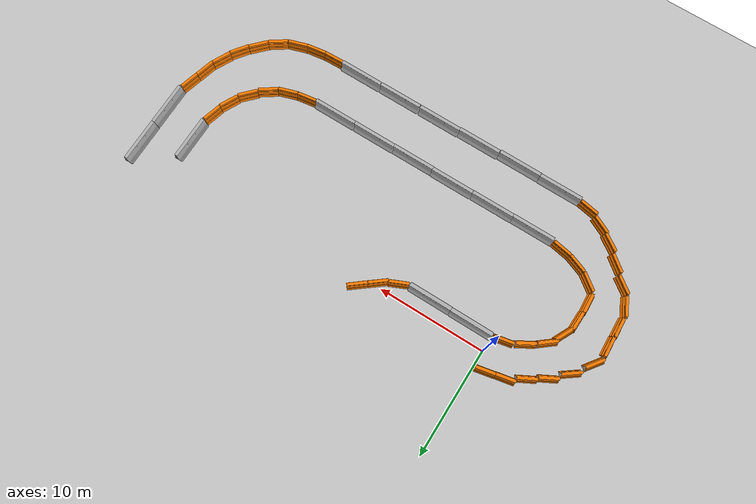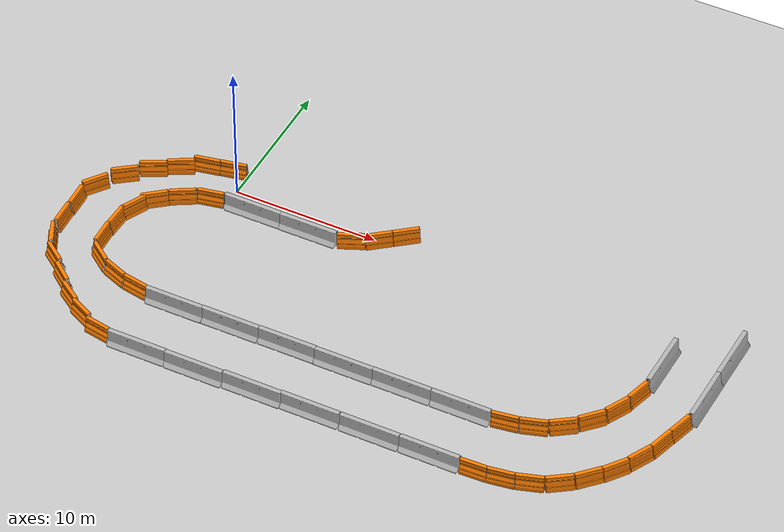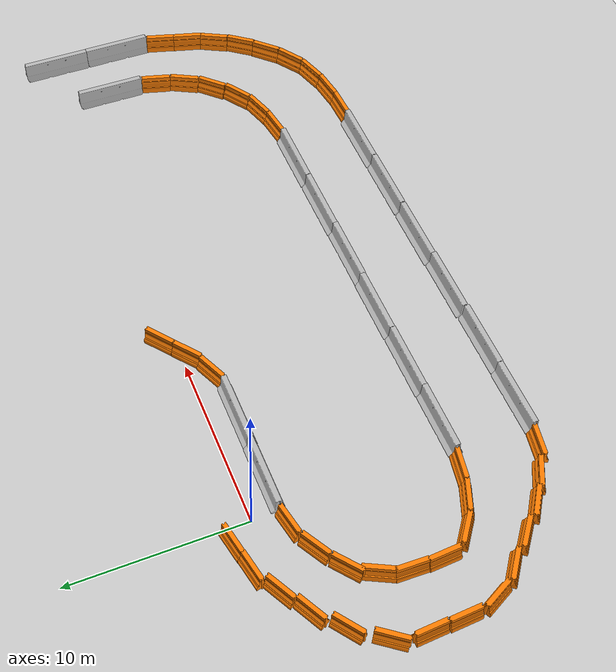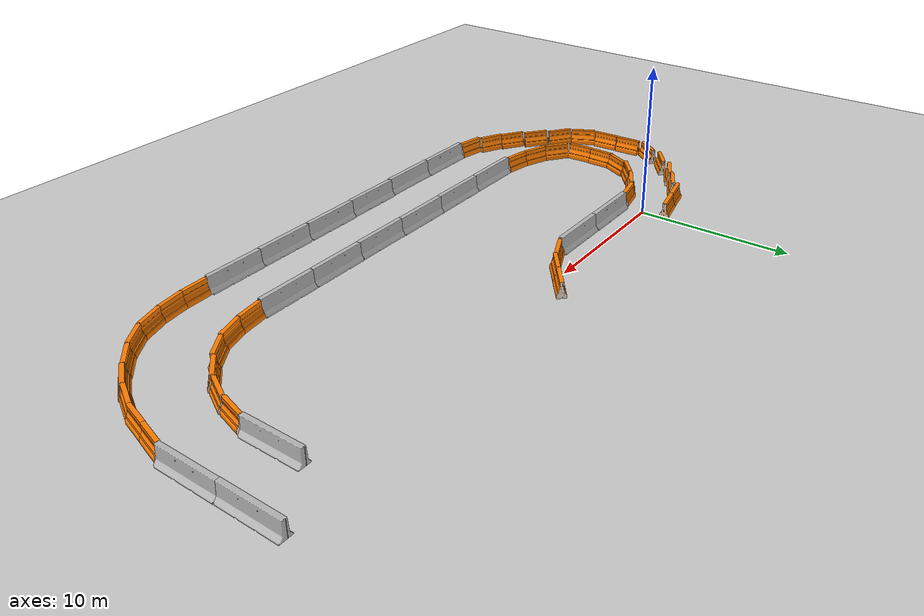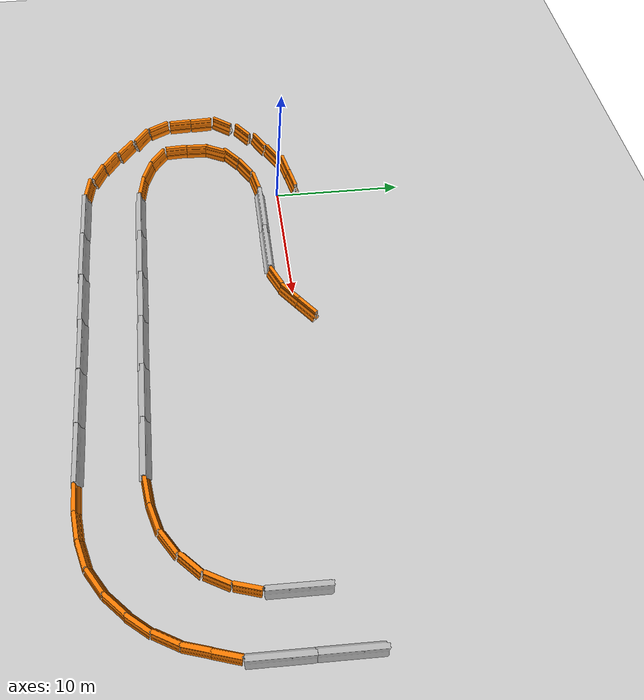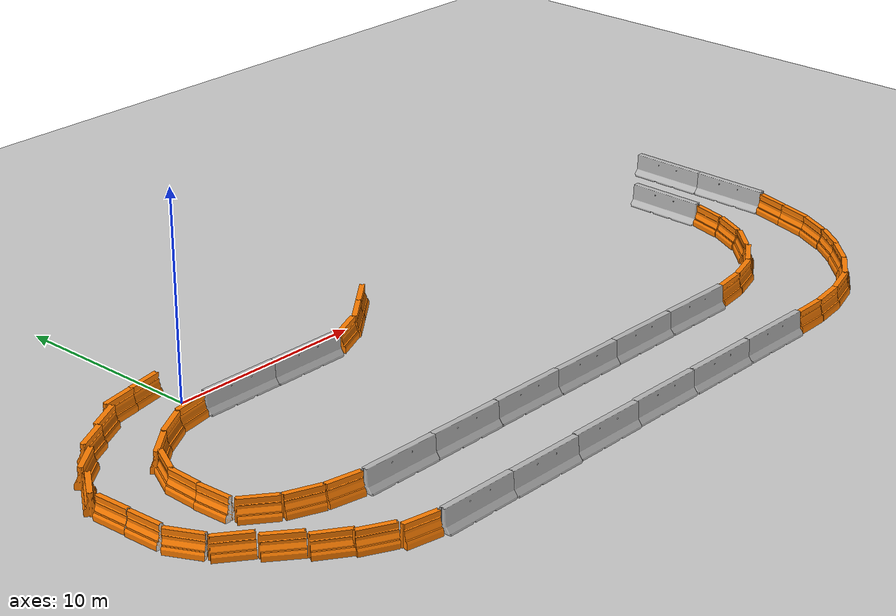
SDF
<sdf version="1.6">
 <world name="default">
  <model name="ground_plane">
   <static>1</static>
   <link name="link">
    <collision name="collision">
     <geometry><plane><normal>0 0 1</normal><size>100 100</size></plane></geometry>
     <surface><friction><ode><mu>100</mu><mu2>50</mu2></ode></friction></surface>
    </collision>
    <visual name="visual">
     <cast_shadows>0</cast_shadows>
     <geometry><plane><normal>0 0 1</normal><size>100 100</size></plane></geometry>
     <material>
      <script><uri>file://media/materials/scripts/gazebo.material</uri><name>Gazebo/Grey</name></script>
     </material>
    </visual>
   </link>
  </model>
  <model name="jersey_barrier_0_clone">
   <static>1</static>
   <link name="link">
    <visual name="visual">
     <geometry>
      <mesh><uri>model://jersey_barrier/meshes/jersey_barrier.dae</uri><scale>1 1 1</scale></mesh>
     </geometry>
    </visual>
    <collision name="upright">
     <pose>0 0 0.5715 0 -0 0</pose>
     <geometry><box><size>4.06542 0.3063 1.143</size></box></geometry>
    </collision>
    <collision name="base">
     <pose>0 0 0.032258 0 -0 0</pose>
     <geometry><box><size>4.06542 0.8107 0.064516</size></box></geometry>
    </collision>
    <collision name="base2">
     <pose>0 0 0.1 0 -0 0</pose>
     <geometry><box><size>4.06542 0.65 0.1</size></box></geometry>
    </collision>
    <collision name="base3">
     <pose>0 0 0.2 0 -0 0</pose>
     <geometry><box><size>4.06542 0.5 0.1</size></box></geometry>
    </collision>
    <collision name="left-angle">
     <pose>0 -0.224 0.2401 0.9 -0 0</pose>
     <geometry><box><size>4.06542 0.5 0.064516</size></box></geometry>
    </collision>
    <collision name="right-angle">
     <pose>0 0.224 0.2401 -0.9 0 0</pose>
     <geometry><box><size>4.06542 0.5 0.064516</size></box></geometry>
    </collision>
   </link>
   <pose>2.00755 -1.4776 0 0 -0 0</pose>
  </model>
  <model name="jersey_barrier_0_clone_0_clone">
   <static>1</static>
   <link name="link">
    <visual name="visual">
     <geometry>
      <mesh><uri>model://jersey_barrier/meshes/jersey_barrier.dae</uri><scale>1 1 1</scale></mesh>
     </geometry>
    </visual>
    <collision name="upright">
     <pose>0 0 0.5715 0 -0 0</pose>
     <geometry><box><size>4.06542 0.3063 1.143</size></box></geometry>
    </collision>
    <collision name="base">
     <pose>0 0 0.032258 0 -0 0</pose>
     <geometry><box><size>4.06542 0.8107 0.064516</size></box></geometry>
    </collision>
    <collision name="base2">
     <pose>0 0 0.1 0 -0 0</pose>
     <geometry><box><size>4.06542 0.65 0.1</size></box></geometry>
    </collision>
    <collision name="base3">
     <pose>0 0 0.2 0 -0 0</pose>
     <geometry><box><size>4.06542 0.5 0.1</size></box></geometry>
    </collision>
    <collision name="left-angle">
     <pose>0 -0.224 0.2401 0.9 -0 0</pose>
     <geometry><box><size>4.06542 0.5 0.064516</size></box></geometry>
    </collision>
    <collision name="right-angle">
     <pose>0 0.224 0.2401 -0.9 0 0</pose>
     <geometry><box><size>4.06542 0.5 0.064516</size></box></geometry>
    </collision>
   </link>
   <pose>6.01454 -1.49668 0 0 -0 0</pose>
  </model>
  <model name="drc_practice_organge_jersey_barrier_clone">
   <static>1</static>
   <link name="link">
    <visual name="visual">
     <geometry>
      <mesh>
       <uri>model://drc_practice_orange_jersey_barrier/meshes/jersey_barrier.dae</uri>
       <scale>1 1 1</scale>
      </mesh>
     </geometry>
    </visual>
    <collision name="collision">
     <geometry>
      <mesh>
       <uri>model://drc_practice_orange_jersey_barrier/meshes/jersey_barrier.dae</uri>
       <scale>1 1 1</scale>
      </mesh>
     </geometry>
    </collision>
   </link>
   <pose>8.92402 -1.13836 0 0 0 -1.14589</pose>
  </model>
  <model name="drc_practice_organge_jersey_barrier_clone_0_clone">
   <static>1</static>
   <link name="link">
    <visual name="visual">
     <geometry>
      <mesh>
       <uri>model://drc_practice_orange_jersey_barrier/meshes/jersey_barrier.dae</uri>
       <scale>1 1 1</scale>
      </mesh>
     </geometry>
    </visual>
    <collision name="collision">
     <geometry>
      <mesh>
       <uri>model://drc_practice_orange_jersey_barrier/meshes/jersey_barrier.dae</uri>
       <scale>1 1 1</scale>
      </mesh>
     </geometry>
    </collision>
   </link>
   <pose>10.4581 -0.28408 0 0 0 -0.895836</pose>
  </model>
  <model name="drc_practice_organge_jersey_barrier_clone_0_clone_clone">
   <static>1</static>
   <link name="link">
    <visual name="visual">
     <geometry>
      <mesh>
       <uri>model://drc_practice_orange_jersey_barrier/meshes/jersey_barrier.dae</uri>
       <scale>1 1 1</scale>
      </mesh>
     </geometry>
    </visual>
    <collision name="collision">
     <geometry>
      <mesh>
       <uri>model://drc_practice_orange_jersey_barrier/meshes/jersey_barrier.dae</uri>
       <scale>1 1 1</scale>
      </mesh>
     </geometry>
    </collision>
   </link>
   <pose>11.8548 0.818549 0 0 0 -0.895836</pose>
  </model>
  <model name="jersey_barrier_1_clone_clone_clone_1_clone_2">
   <static>1</static>
   <link name="link">
    <visual name="visual">
     <geometry>
      <mesh><uri>model://jersey_barrier/meshes/jersey_barrier.dae</uri><scale>1 1 1</scale></mesh>
     </geometry>
    </visual>
    <collision name="upright">
     <pose>0 0 0.5715 0 -0 0</pose>
     <geometry><box><size>4.06542 0.3063 1.143</size></box></geometry>
    </collision>
    <collision name="base">
     <pose>0 0 0.032258 0 -0 0</pose>
     <geometry><box><size>4.06542 0.8107 0.064516</size></box></geometry>
    </collision>
    <collision name="base2">
     <pose>0 0 0.1 0 -0 0</pose>
     <geometry><box><size>4.06542 0.65 0.1</size></box></geometry>
    </collision>
    <collision name="base3">
     <pose>0 0 0.2 0 -0 0</pose>
     <geometry><box><size>4.06542 0.5 0.1</size></box></geometry>
    </collision>
    <collision name="left-angle">
     <pose>0 -0.224 0.2401 0.9 -0 0</pose>
     <geometry><box><size>4.06542 0.5 0.064516</size></box></geometry>
    </collision>
    <collision name="right-angle">
     <pose>0 0.224 0.2401 -0.9 0 0</pose>
     <geometry><box><size>4.06542 0.5 0.064516</size></box></geometry>
    </collision>
   </link>
   <pose>34.8024 0.118194 0 0 0 -1.5863</pose>
  </model>
  <model name="jersey_barrier_1_clone_clone_clone_1_clone_3">
   <static>1</static>
   <link name="link">
    <visual name="visual">
     <geometry>
      <mesh><uri>model://jersey_barrier/meshes/jersey_barrier.dae</uri><scale>1 1 1</scale></mesh>
     </geometry>
    </visual>
    <collision name="upright">
     <pose>0 0 0.5715 0 -0 0</pose>
     <geometry><box><size>4.06542 0.3063 1.143</size></box></geometry>
    </collision>
    <collision name="base">
     <pose>0 0 0.032258 0 -0 0</pose>
     <geometry><box><size>4.06542 0.8107 0.064516</size></box></geometry>
    </collision>
    <collision name="base2">
     <pose>0 0 0.1 0 -0 0</pose>
     <geometry><box><size>4.06542 0.65 0.1</size></box></geometry>
    </collision>
    <collision name="base3">
     <pose>0 0 0.2 0 -0 0</pose>
     <geometry><box><size>4.06542 0.5 0.1</size></box></geometry>
    </collision>
    <collision name="left-angle">
     <pose>0 -0.224 0.2401 0.9 -0 0</pose>
     <geometry><box><size>4.06542 0.5 0.064516</size></box></geometry>
    </collision>
    <collision name="right-angle">
     <pose>0 0.224 0.2401 -0.9 0 0</pose>
     <geometry><box><size>4.06542 0.5 0.064516</size></box></geometry>
    </collision>
   </link>
   <pose>31.2111 -2.38945 0 0 0 -1.5863</pose>
  </model>
  <model name="jersey_barrier_1_clone_clone_clone_1_clone_4">
   <static>1</static>
   <link name="link">
    <visual name="visual">
     <geometry>
      <mesh><uri>model://jersey_barrier/meshes/jersey_barrier.dae</uri><scale>1 1 1</scale></mesh>
     </geometry>
    </visual>
    <collision name="upright">
     <pose>0 0 0.5715 0 -0 0</pose>
     <geometry><box><size>4.06542 0.3063 1.143</size></box></geometry>
    </collision>
    <collision name="base">
     <pose>0 0 0.032258 0 -0 0</pose>
     <geometry><box><size>4.06542 0.8107 0.064516</size></box></geometry>
    </collision>
    <collision name="base2">
     <pose>0 0 0.1 0 -0 0</pose>
     <geometry><box><size>4.06542 0.65 0.1</size></box></geometry>
    </collision>
    <collision name="base3">
     <pose>0 0 0.2 0 -0 0</pose>
     <geometry><box><size>4.06542 0.5 0.1</size></box></geometry>
    </collision>
    <collision name="left-angle">
     <pose>0 -0.224 0.2401 0.9 -0 0</pose>
     <geometry><box><size>4.06542 0.5 0.064516</size></box></geometry>
    </collision>
    <collision name="right-angle">
     <pose>0 0.224 0.2401 -0.9 0 0</pose>
     <geometry><box><size>4.06542 0.5 0.064516</size></box></geometry>
    </collision>
   </link>
   <pose>34.7522 -3.88891 0 0 0 -1.5863</pose>
  </model>
  <model name="drc_practice_organge_jersey_barrier_3">
   <static>1</static>
   <link name="link">
    <visual name="visual">
     <geometry>
      <mesh>
       <uri>model://drc_practice_orange_jersey_barrier/meshes/jersey_barrier.dae</uri>
       <scale>1 1 1</scale>
      </mesh>
     </geometry>
    </visual>
    <collision name="collision">
     <geometry>
      <mesh>
       <uri>model://drc_practice_orange_jersey_barrier/meshes/jersey_barrier.dae</uri>
       <scale>1 1 1</scale>
      </mesh>
     </geometry>
    </collision>
   </link>
   <pose>30.9233 -5.34087 0 0 0 -0.275076</pose>
  </model>
  <model name="drc_practice_organge_jersey_barrier_3_clone">
   <static>1</static>
   <link name="link">
    <visual name="visual">
     <geometry>
      <mesh>
       <uri>model://drc_practice_orange_jersey_barrier/meshes/jersey_barrier.dae</uri>
       <scale>1 1 1</scale>
      </mesh>
     </geometry>
    </visual>
    <collision name="collision">
     <geometry>
      <mesh>
       <uri>model://drc_practice_orange_jersey_barrier/meshes/jersey_barrier.dae</uri>
       <scale>1 1 1</scale>
      </mesh>
     </geometry>
    </collision>
   </link>
   <pose>34.3878 -6.81189 0 0 0 -0.275076</pose>
  </model>
  <model name="drc_practice_organge_jersey_barrier_3_clone_0">
   <static>1</static>
   <link name="link">
    <visual name="visual">
     <geometry>
      <mesh>
       <uri>model://drc_practice_orange_jersey_barrier/meshes/jersey_barrier.dae</uri>
       <scale>1 1 1</scale>
      </mesh>
     </geometry>
    </visual>
    <collision name="collision">
     <geometry>
      <mesh>
       <uri>model://drc_practice_orange_jersey_barrier/meshes/jersey_barrier.dae</uri>
       <scale>1 1 1</scale>
      </mesh>
     </geometry>
    </collision>
   </link>
   <pose>33.8883 -8.50238 0 0 0 -0.275076</pose>
  </model>
  <model name="drc_practice_organge_jersey_barrier_3_clone_1">
   <static>1</static>
   <link name="link">
    <visual name="visual">
     <geometry>
      <mesh>
       <uri>model://drc_practice_orange_jersey_barrier/meshes/jersey_barrier.dae</uri>
       <scale>1 1 1</scale>
      </mesh>
     </geometry>
    </visual>
    <collision name="collision">
     <geometry>
      <mesh>
       <uri>model://drc_practice_orange_jersey_barrier/meshes/jersey_barrier.dae</uri>
       <scale>1 1 1</scale>
      </mesh>
     </geometry>
    </collision>
   </link>
   <pose>30.2962 -7.0495 0 0 0 -0.473233</pose>
  </model>
  <model name="drc_practice_organge_jersey_barrier_3_clone_1_clone">
   <static>1</static>
   <link name="link">
    <visual name="visual">
     <geometry>
      <mesh>
       <uri>model://drc_practice_orange_jersey_barrier/meshes/jersey_barrier.dae</uri>
       <scale>1 1 1</scale>
      </mesh>
     </geometry>
    </visual>
    <collision name="collision">
     <geometry>
      <mesh>
       <uri>model://drc_practice_orange_jersey_barrier/meshes/jersey_barrier.dae</uri>
       <scale>1 1 1</scale>
      </mesh>
     </geometry>
    </collision>
   </link>
   <pose>29.293 -8.57395 0 0 0 -0.760693</pose>
  </model>
  <model name="drc_practice_organge_jersey_barrier_3_clone_1_clone_0">
   <static>1</static>
   <link name="link">
    <visual name="visual">
     <geometry>
      <mesh>
       <uri>model://drc_practice_orange_jersey_barrier/meshes/jersey_barrier.dae</uri>
       <scale>1 1 1</scale>
      </mesh>
     </geometry>
    </visual>
    <collision name="collision">
     <geometry>
      <mesh>
       <uri>model://drc_practice_orange_jersey_barrier/meshes/jersey_barrier.dae</uri>
       <scale>1 1 1</scale>
      </mesh>
     </geometry>
    </collision>
   </link>
   <pose>33.2195 -10.1367 0 0 0 -0.473233</pose>
  </model>
  <model name="drc_practice_organge_jersey_barrier_3_clone_1_clone_1">
   <static>1</static>
   <link name="link">
    <visual name="visual">
     <geometry>
      <mesh>
       <uri>model://drc_practice_orange_jersey_barrier/meshes/jersey_barrier.dae</uri>
       <scale>1 1 1</scale>
      </mesh>
     </geometry>
    </visual>
    <collision name="collision">
     <geometry>
      <mesh>
       <uri>model://drc_practice_orange_jersey_barrier/meshes/jersey_barrier.dae</uri>
       <scale>1 1 1</scale>
      </mesh>
     </geometry>
    </collision>
   </link>
   <pose>32.3138 -11.6684 0 0 0 -0.639695</pose>
  </model>
  <model name="drc_practice_organge_jersey_barrier_3_clone_1_clone_clone">
   <static>1</static>
   <link name="link">
    <visual name="visual">
     <geometry>
      <mesh>
       <uri>model://drc_practice_orange_jersey_barrier/meshes/jersey_barrier.dae</uri>
       <scale>1 1 1</scale>
      </mesh>
     </geometry>
    </visual>
    <collision name="collision">
     <geometry>
      <mesh>
       <uri>model://drc_practice_orange_jersey_barrier/meshes/jersey_barrier.dae</uri>
       <scale>1 1 1</scale>
      </mesh>
     </geometry>
    </collision>
   </link>
   <pose>31.1391 -12.9963 0 0 0 -0.760693</pose>
  </model>
  <model name="drc_practice_organge_jersey_barrier_3_clone_1_clone_clone_0">
   <static>1</static>
   <link name="link">
    <visual name="visual">
     <geometry>
      <mesh>
       <uri>model://drc_practice_orange_jersey_barrier/meshes/jersey_barrier.dae</uri>
       <scale>1 1 1</scale>
      </mesh>
     </geometry>
    </visual>
    <collision name="collision">
     <geometry>
      <mesh>
       <uri>model://drc_practice_orange_jersey_barrier/meshes/jersey_barrier.dae</uri>
       <scale>1 1 1</scale>
      </mesh>
     </geometry>
    </collision>
   </link>
   <pose>27.9655 -9.81715 0 0 0 -0.964796</pose>
  </model>
  <model name="drc_practice_organge_jersey_barrier_3_clone_1_clone_clone_0_clone">
   <static>1</static>
   <link name="link">
    <visual name="visual">
     <geometry>
      <mesh>
       <uri>model://drc_practice_orange_jersey_barrier/meshes/jersey_barrier.dae</uri>
       <scale>1 1 1</scale>
      </mesh>
     </geometry>
    </visual>
    <collision name="collision">
     <geometry>
      <mesh>
       <uri>model://drc_practice_orange_jersey_barrier/meshes/jersey_barrier.dae</uri>
       <scale>1 1 1</scale>
      </mesh>
     </geometry>
    </collision>
   </link>
   <pose>26.3757 -10.6505 0 0 0 -1.25765</pose>
  </model>
  <model name="drc_practice_organge_jersey_barrier_3_clone_1_clone_clone_0_clone_clone">
   <static>1</static>
   <link name="link">
    <visual name="visual">
     <geometry>
      <mesh>
       <uri>model://drc_practice_orange_jersey_barrier/meshes/jersey_barrier.dae</uri>
       <scale>1 1 1</scale>
      </mesh>
     </geometry>
    </visual>
    <collision name="collision">
     <geometry>
      <mesh>
       <uri>model://drc_practice_orange_jersey_barrier/meshes/jersey_barrier.dae</uri>
       <scale>1 1 1</scale>
      </mesh>
     </geometry>
    </collision>
   </link>
   <pose>24.6265 -11.0608 0 0 0 -1.41732</pose>
  </model>
  <model name="drc_practice_organge_jersey_barrier_3_clone_1_clone_clone_0_clone_0">
   <static>1</static>
   <link name="link">
    <visual name="visual">
     <geometry>
      <mesh>
       <uri>model://drc_practice_orange_jersey_barrier/meshes/jersey_barrier.dae</uri>
       <scale>1 1 1</scale>
      </mesh>
     </geometry>
    </visual>
    <collision name="collision">
     <geometry>
      <mesh>
       <uri>model://drc_practice_orange_jersey_barrier/meshes/jersey_barrier.dae</uri>
       <scale>1 1 1</scale>
      </mesh>
     </geometry>
    </collision>
   </link>
   <pose>29.7749 -14.1643 0 0 0 -0.964796</pose>
  </model>
  <model name="drc_practice_organge_jersey_barrier_3_clone_1_clone_clone_0_clone_clone_0">
   <static>1</static>
   <link name="link">
    <visual name="visual">
     <geometry>
      <mesh>
       <uri>model://drc_practice_orange_jersey_barrier/meshes/jersey_barrier.dae</uri>
       <scale>1 1 1</scale>
      </mesh>
     </geometry>
    </visual>
    <collision name="collision">
     <geometry>
      <mesh>
       <uri>model://drc_practice_orange_jersey_barrier/meshes/jersey_barrier.dae</uri>
       <scale>1 1 1</scale>
      </mesh>
     </geometry>
    </collision>
   </link>
   <pose>28.1608 -14.9646 0 0 0 -1.25765</pose>
  </model>
  <model name="drc_practice_organge_jersey_barrier_3_clone_1_clone_clone_0_clone_clone_clone">
   <static>1</static>
   <link name="link">
    <visual name="visual">
     <geometry>
      <mesh>
       <uri>model://drc_practice_orange_jersey_barrier/meshes/jersey_barrier.dae</uri>
       <scale>1 1 1</scale>
      </mesh>
     </geometry>
    </visual>
    <collision name="collision">
     <geometry>
      <mesh>
       <uri>model://drc_practice_orange_jersey_barrier/meshes/jersey_barrier.dae</uri>
       <scale>1 1 1</scale>
      </mesh>
     </geometry>
    </collision>
   </link>
   <pose>26.4387 -15.3791 0 0 0 -1.41732</pose>
  </model>
  <model name="drc_practice_organge_jersey_barrier_3_clone_1_clone_clone_0_clone_clone_clone_0">
   <static>1</static>
   <link name="link">
    <visual name="visual">
     <geometry>
      <mesh>
       <uri>model://drc_practice_orange_jersey_barrier/meshes/jersey_barrier.dae</uri>
       <scale>1 1 1</scale>
      </mesh>
     </geometry>
    </visual>
    <collision name="collision">
     <geometry>
      <mesh>
       <uri>model://drc_practice_orange_jersey_barrier/meshes/jersey_barrier.dae</uri>
       <scale>1 1 1</scale>
      </mesh>
     </geometry>
    </collision>
   </link>
   <pose>24.6668 -15.5415 0 0 0 -1.53316</pose>
  </model>
  <model name="jersey_barrier_0_clone_0_clone_clone">
   <static>1</static>
   <link name="link">
    <visual name="visual">
     <geometry>
      <mesh><uri>model://jersey_barrier/meshes/jersey_barrier.dae</uri><scale>1 1 1</scale></mesh>
     </geometry>
    </visual>
    <collision name="upright">
     <pose>0 0 0.5715 0 -0 0</pose>
     <geometry><box><size>4.06542 0.3063 1.143</size></box></geometry>
    </collision>
    <collision name="base">
     <pose>0 0 0.032258 0 -0 0</pose>
     <geometry><box><size>4.06542 0.8107 0.064516</size></box></geometry>
    </collision>
    <collision name="base2">
     <pose>0 0 0.1 0 -0 0</pose>
     <geometry><box><size>4.06542 0.65 0.1</size></box></geometry>
    </collision>
    <collision name="base3">
     <pose>0 0 0.2 0 -0 0</pose>
     <geometry><box><size>4.06542 0.5 0.1</size></box></geometry>
    </collision>
    <collision name="left-angle">
     <pose>0 -0.224 0.2401 0.9 -0 0</pose>
     <geometry><box><size>4.06542 0.5 0.064516</size></box></geometry>
    </collision>
    <collision name="right-angle">
     <pose>0 0.224 0.2401 -0.9 0 0</pose>
     <geometry><box><size>4.06542 0.5 0.064516</size></box></geometry>
    </collision>
   </link>
   <pose>21.6949 -11.225 0 0 -0 0</pose>
  </model>
  <model name="jersey_barrier_0_clone_0_clone_clone_0">
   <static>1</static>
   <link name="link">
    <visual name="visual">
     <geometry>
      <mesh><uri>model://jersey_barrier/meshes/jersey_barrier.dae</uri><scale>1 1 1</scale></mesh>
     </geometry>
    </visual>
    <collision name="upright">
     <pose>0 0 0.5715 0 -0 0</pose>
     <geometry><box><size>4.06542 0.3063 1.143</size></box></geometry>
    </collision>
    <collision name="base">
     <pose>0 0 0.032258 0 -0 0</pose>
     <geometry><box><size>4.06542 0.8107 0.064516</size></box></geometry>
    </collision>
    <collision name="base2">
     <pose>0 0 0.1 0 -0 0</pose>
     <geometry><box><size>4.06542 0.65 0.1</size></box></geometry>
    </collision>
    <collision name="base3">
     <pose>0 0 0.2 0 -0 0</pose>
     <geometry><box><size>4.06542 0.5 0.1</size></box></geometry>
    </collision>
    <collision name="left-angle">
     <pose>0 -0.224 0.2401 0.9 -0 0</pose>
     <geometry><box><size>4.06542 0.5 0.064516</size></box></geometry>
    </collision>
    <collision name="right-angle">
     <pose>0 0.224 0.2401 -0.9 0 0</pose>
     <geometry><box><size>4.06542 0.5 0.064516</size></box></geometry>
    </collision>
   </link>
   <pose>21.7131 -15.5569 0 0 -0 0</pose>
  </model>
  <model name="jersey_barrier_0_clone_0_clone_clone_1">
   <static>1</static>
   <link name="link">
    <visual name="visual">
     <geometry>
      <mesh><uri>model://jersey_barrier/meshes/jersey_barrier.dae</uri><scale>1 1 1</scale></mesh>
     </geometry>
    </visual>
    <collision name="upright">
     <pose>0 0 0.5715 0 -0 0</pose>
     <geometry><box><size>4.06542 0.3063 1.143</size></box></geometry>
    </collision>
    <collision name="base">
     <pose>0 0 0.032258 0 -0 0</pose>
     <geometry><box><size>4.06542 0.8107 0.064516</size></box></geometry>
    </collision>
    <collision name="base2">
     <pose>0 0 0.1 0 -0 0</pose>
     <geometry><box><size>4.06542 0.65 0.1</size></box></geometry>
    </collision>
    <collision name="base3">
     <pose>0 0 0.2 0 -0 0</pose>
     <geometry><box><size>4.06542 0.5 0.1</size></box></geometry>
    </collision>
    <collision name="left-angle">
     <pose>0 -0.224 0.2401 0.9 -0 0</pose>
     <geometry><box><size>4.06542 0.5 0.064516</size></box></geometry>
    </collision>
    <collision name="right-angle">
     <pose>0 0.224 0.2401 -0.9 0 0</pose>
     <geometry><box><size>4.06542 0.5 0.064516</size></box></geometry>
    </collision>
   </link>
   <pose>17.6371 -11.233 0 0 -0 0</pose>
  </model>
  <model name="jersey_barrier_0_clone_0_clone_clone_2">
   <static>1</static>
   <link name="link">
    <visual name="visual">
     <geometry>
      <mesh><uri>model://jersey_barrier/meshes/jersey_barrier.dae</uri><scale>1 1 1</scale></mesh>
     </geometry>
    </visual>
    <collision name="upright">
     <pose>0 0 0.5715 0 -0 0</pose>
     <geometry><box><size>4.06542 0.3063 1.143</size></box></geometry>
    </collision>
    <collision name="base">
     <pose>0 0 0.032258 0 -0 0</pose>
     <geometry><box><size>4.06542 0.8107 0.064516</size></box></geometry>
    </collision>
    <collision name="base2">
     <pose>0 0 0.1 0 -0 0</pose>
     <geometry><box><size>4.06542 0.65 0.1</size></box></geometry>
    </collision>
    <collision name="base3">
     <pose>0 0 0.2 0 -0 0</pose>
     <geometry><box><size>4.06542 0.5 0.1</size></box></geometry>
    </collision>
    <collision name="left-angle">
     <pose>0 -0.224 0.2401 0.9 -0 0</pose>
     <geometry><box><size>4.06542 0.5 0.064516</size></box></geometry>
    </collision>
    <collision name="right-angle">
     <pose>0 0.224 0.2401 -0.9 0 0</pose>
     <geometry><box><size>4.06542 0.5 0.064516</size></box></geometry>
    </collision>
   </link>
   <pose>17.6555 -15.5757 0 0 -0 0</pose>
  </model>
  <model name="jersey_barrier_0_clone_0_clone_clone_3">
   <static>1</static>
   <link name="link">
    <visual name="visual">
     <geometry>
      <mesh><uri>model://jersey_barrier/meshes/jersey_barrier.dae</uri><scale>1 1 1</scale></mesh>
     </geometry>
    </visual>
    <collision name="upright">
     <pose>0 0 0.5715 0 -0 0</pose>
     <geometry><box><size>4.06542 0.3063 1.143</size></box></geometry>
    </collision>
    <collision name="base">
     <pose>0 0 0.032258 0 -0 0</pose>
     <geometry><box><size>4.06542 0.8107 0.064516</size></box></geometry>
    </collision>
    <collision name="base2">
     <pose>0 0 0.1 0 -0 0</pose>
     <geometry><box><size>4.06542 0.65 0.1</size></box></geometry>
    </collision>
    <collision name="base3">
     <pose>0 0 0.2 0 -0 0</pose>
     <geometry><box><size>4.06542 0.5 0.1</size></box></geometry>
    </collision>
    <collision name="left-angle">
     <pose>0 -0.224 0.2401 0.9 -0 0</pose>
     <geometry><box><size>4.06542 0.5 0.064516</size></box></geometry>
    </collision>
    <collision name="right-angle">
     <pose>0 0.224 0.2401 -0.9 0 0</pose>
     <geometry><box><size>4.06542 0.5 0.064516</size></box></geometry>
    </collision>
   </link>
   <pose>13.6404 -11.2574 0 0 -0 0</pose>
  </model>
  <model name="jersey_barrier_0_clone_0_clone_clone_4">
   <static>1</static>
   <link name="link">
    <visual name="visual">
     <geometry>
      <mesh><uri>model://jersey_barrier/meshes/jersey_barrier.dae</uri><scale>1 1 1</scale></mesh>
     </geometry>
    </visual>
    <collision name="upright">
     <pose>0 0 0.5715 0 -0 0</pose>
     <geometry><box><size>4.06542 0.3063 1.143</size></box></geometry>
    </collision>
    <collision name="base">
     <pose>0 0 0.032258 0 -0 0</pose>
     <geometry><box><size>4.06542 0.8107 0.064516</size></box></geometry>
    </collision>
    <collision name="base2">
     <pose>0 0 0.1 0 -0 0</pose>
     <geometry><box><size>4.06542 0.65 0.1</size></box></geometry>
    </collision>
    <collision name="base3">
     <pose>0 0 0.2 0 -0 0</pose>
     <geometry><box><size>4.06542 0.5 0.1</size></box></geometry>
    </collision>
    <collision name="left-angle">
     <pose>0 -0.224 0.2401 0.9 -0 0</pose>
     <geometry><box><size>4.06542 0.5 0.064516</size></box></geometry>
    </collision>
    <collision name="right-angle">
     <pose>0 0.224 0.2401 -0.9 0 0</pose>
     <geometry><box><size>4.06542 0.5 0.064516</size></box></geometry>
    </collision>
   </link>
   <pose>9.67983 -11.2318 0 0 -0 0</pose>
  </model>
  <model name="jersey_barrier_0_clone_0_clone_clone_5">
   <static>1</static>
   <link name="link">
    <visual name="visual">
     <geometry>
      <mesh><uri>model://jersey_barrier/meshes/jersey_barrier.dae</uri><scale>1 1 1</scale></mesh>
     </geometry>
    </visual>
    <collision name="upright">
     <pose>0 0 0.5715 0 -0 0</pose>
     <geometry><box><size>4.06542 0.3063 1.143</size></box></geometry>
    </collision>
    <collision name="base">
     <pose>0 0 0.032258 0 -0 0</pose>
     <geometry><box><size>4.06542 0.8107 0.064516</size></box></geometry>
    </collision>
    <collision name="base2">
     <pose>0 0 0.1 0 -0 0</pose>
     <geometry><box><size>4.06542 0.65 0.1</size></box></geometry>
    </collision>
    <collision name="base3">
     <pose>0 0 0.2 0 -0 0</pose>
     <geometry><box><size>4.06542 0.5 0.1</size></box></geometry>
    </collision>
    <collision name="left-angle">
     <pose>0 -0.224 0.2401 0.9 -0 0</pose>
     <geometry><box><size>4.06542 0.5 0.064516</size></box></geometry>
    </collision>
    <collision name="right-angle">
     <pose>0 0.224 0.2401 -0.9 0 0</pose>
     <geometry><box><size>4.06542 0.5 0.064516</size></box></geometry>
    </collision>
   </link>
   <pose>5.64179 -11.2574 0 0 -0 0</pose>
  </model>
  <model name="jersey_barrier_0_clone_0_clone_clone_6">
   <static>1</static>
   <link name="link">
    <visual name="visual">
     <geometry>
      <mesh><uri>model://jersey_barrier/meshes/jersey_barrier.dae</uri><scale>1 1 1</scale></mesh>
     </geometry>
    </visual>
    <collision name="upright">
     <pose>0 0 0.5715 0 -0 0</pose>
     <geometry><box><size>4.06542 0.3063 1.143</size></box></geometry>
    </collision>
    <collision name="base">
     <pose>0 0 0.032258 0 -0 0</pose>
     <geometry><box><size>4.06542 0.8107 0.064516</size></box></geometry>
    </collision>
    <collision name="base2">
     <pose>0 0 0.1 0 -0 0</pose>
     <geometry><box><size>4.06542 0.65 0.1</size></box></geometry>
    </collision>
    <collision name="base3">
     <pose>0 0 0.2 0 -0 0</pose>
     <geometry><box><size>4.06542 0.5 0.1</size></box></geometry>
    </collision>
    <collision name="left-angle">
     <pose>0 -0.224 0.2401 0.9 -0 0</pose>
     <geometry><box><size>4.06542 0.5 0.064516</size></box></geometry>
    </collision>
    <collision name="right-angle">
     <pose>0 0.224 0.2401 -0.9 0 0</pose>
     <geometry><box><size>4.06542 0.5 0.064516</size></box></geometry>
    </collision>
   </link>
   <pose>13.5638 -15.5784 0 0 -0 0</pose>
  </model>
  <model name="jersey_barrier_0_clone_0_clone_clone_7">
   <static>1</static>
   <link name="link">
    <visual name="visual">
     <geometry>
      <mesh><uri>model://jersey_barrier/meshes/jersey_barrier.dae</uri><scale>1 1 1</scale></mesh>
     </geometry>
    </visual>
    <collision name="upright">
     <pose>0 0 0.5715 0 -0 0</pose>
     <geometry><box><size>4.06542 0.3063 1.143</size></box></geometry>
    </collision>
    <collision name="base">
     <pose>0 0 0.032258 0 -0 0</pose>
     <geometry><box><size>4.06542 0.8107 0.064516</size></box></geometry>
    </collision>
    <collision name="base2">
     <pose>0 0 0.1 0 -0 0</pose>
     <geometry><box><size>4.06542 0.65 0.1</size></box></geometry>
    </collision>
    <collision name="base3">
     <pose>0 0 0.2 0 -0 0</pose>
     <geometry><box><size>4.06542 0.5 0.1</size></box></geometry>
    </collision>
    <collision name="left-angle">
     <pose>0 -0.224 0.2401 0.9 -0 0</pose>
     <geometry><box><size>4.06542 0.5 0.064516</size></box></geometry>
    </collision>
    <collision name="right-angle">
     <pose>0 0.224 0.2401 -0.9 0 0</pose>
     <geometry><box><size>4.06542 0.5 0.064516</size></box></geometry>
    </collision>
   </link>
   <pose>9.55104 -15.6301 0 0 -0 0</pose>
  </model>
  <model name="jersey_barrier_0_clone_0_clone_clone_8">
   <static>1</static>
   <link name="link">
    <visual name="visual">
     <geometry>
      <mesh><uri>model://jersey_barrier/meshes/jersey_barrier.dae</uri><scale>1 1 1</scale></mesh>
     </geometry>
    </visual>
    <collision name="upright">
     <pose>0 0 0.5715 0 -0 0</pose>
     <geometry><box><size>4.06542 0.3063 1.143</size></box></geometry>
    </collision>
    <collision name="base">
     <pose>0 0 0.032258 0 -0 0</pose>
     <geometry><box><size>4.06542 0.8107 0.064516</size></box></geometry>
    </collision>
    <collision name="base2">
     <pose>0 0 0.1 0 -0 0</pose>
     <geometry><box><size>4.06542 0.65 0.1</size></box></geometry>
    </collision>
    <collision name="base3">
     <pose>0 0 0.2 0 -0 0</pose>
     <geometry><box><size>4.06542 0.5 0.1</size></box></geometry>
    </collision>
    <collision name="left-angle">
     <pose>0 -0.224 0.2401 0.9 -0 0</pose>
     <geometry><box><size>4.06542 0.5 0.064516</size></box></geometry>
    </collision>
    <collision name="right-angle">
     <pose>0 0.224 0.2401 -0.9 0 0</pose>
     <geometry><box><size>4.06542 0.5 0.064516</size></box></geometry>
    </collision>
   </link>
   <pose>5.48696 -15.7068 0 0 -0 0</pose>
  </model>
  <model name="jersey_barrier_0_clone_0_clone_clone_9">
   <static>1</static>
   <link name="link">
    <visual name="visual">
     <geometry>
      <mesh><uri>model://jersey_barrier/meshes/jersey_barrier.dae</uri><scale>1 1 1</scale></mesh>
     </geometry>
    </visual>
    <collision name="upright">
     <pose>0 0 0.5715 0 -0 0</pose>
     <geometry><box><size>4.06542 0.3063 1.143</size></box></geometry>
    </collision>
    <collision name="base">
     <pose>0 0 0.032258 0 -0 0</pose>
     <geometry><box><size>4.06542 0.8107 0.064516</size></box></geometry>
    </collision>
    <collision name="base2">
     <pose>0 0 0.1 0 -0 0</pose>
     <geometry><box><size>4.06542 0.65 0.1</size></box></geometry>
    </collision>
    <collision name="base3">
     <pose>0 0 0.2 0 -0 0</pose>
     <geometry><box><size>4.06542 0.5 0.1</size></box></geometry>
    </collision>
    <collision name="left-angle">
     <pose>0 -0.224 0.2401 0.9 -0 0</pose>
     <geometry><box><size>4.06542 0.5 0.064516</size></box></geometry>
    </collision>
    <collision name="right-angle">
     <pose>0 0.224 0.2401 -0.9 0 0</pose>
     <geometry><box><size>4.06542 0.5 0.064516</size></box></geometry>
    </collision>
   </link>
   <pose>1.44892 -15.6811 0 0 -0 0</pose>
  </model>
  <model name="jersey_barrier_0_clone_0_clone_clone_10">
   <static>1</static>
   <link name="link">
    <visual name="visual">
     <geometry>
      <mesh><uri>model://jersey_barrier/meshes/jersey_barrier.dae</uri><scale>1 1 1</scale></mesh>
     </geometry>
    </visual>
    <collision name="upright">
     <pose>0 0 0.5715 0 -0 0</pose>
     <geometry><box><size>4.06542 0.3063 1.143</size></box></geometry>
    </collision>
    <collision name="base">
     <pose>0 0 0.032258 0 -0 0</pose>
     <geometry><box><size>4.06542 0.8107 0.064516</size></box></geometry>
    </collision>
    <collision name="base2">
     <pose>0 0 0.1 0 -0 0</pose>
     <geometry><box><size>4.06542 0.65 0.1</size></box></geometry>
    </collision>
    <collision name="base3">
     <pose>0 0 0.2 0 -0 0</pose>
     <geometry><box><size>4.06542 0.5 0.1</size></box></geometry>
    </collision>
    <collision name="left-angle">
     <pose>0 -0.224 0.2401 0.9 -0 0</pose>
     <geometry><box><size>4.06542 0.5 0.064516</size></box></geometry>
    </collision>
    <collision name="right-angle">
     <pose>0 0.224 0.2401 -0.9 0 0</pose>
     <geometry><box><size>4.06542 0.5 0.064516</size></box></geometry>
    </collision>
   </link>
   <pose>1.68045 -11.2831 0 0 -0 0</pose>
  </model>
  <model name="drc_practice_organge_jersey_barrier_4">
   <static>1</static>
   <link name="link">
    <visual name="visual">
     <geometry>
      <mesh>
       <uri>model://drc_practice_orange_jersey_barrier/meshes/jersey_barrier.dae</uri>
       <scale>1 1 1</scale>
      </mesh>
     </geometry>
    </visual>
    <collision name="collision">
     <geometry>
      <mesh>
       <uri>model://drc_practice_orange_jersey_barrier/meshes/jersey_barrier.dae</uri>
       <scale>1 1 1</scale>
      </mesh>
     </geometry>
    </collision>
   </link>
   <pose>-1.26756 -11.0436 0 0 0 -1.74105</pose>
  </model>
  <model name="drc_practice_organge_jersey_barrier_4_clone">
   <static>1</static>
   <link name="link">
    <visual name="visual">
     <geometry>
      <mesh>
       <uri>model://drc_practice_orange_jersey_barrier/meshes/jersey_barrier.dae</uri>
       <scale>1 1 1</scale>
      </mesh>
     </geometry>
    </visual>
    <collision name="collision">
     <geometry>
      <mesh>
       <uri>model://drc_practice_orange_jersey_barrier/meshes/jersey_barrier.dae</uri>
       <scale>1 1 1</scale>
      </mesh>
     </geometry>
    </collision>
   </link>
   <pose>-1.4971 -15.4195 0 0 0 -1.74105</pose>
  </model>
  <model name="drc_practice_organge_jersey_barrier_4_clone_0">
   <static>1</static>
   <link name="link">
    <visual name="visual">
     <geometry>
      <mesh>
       <uri>model://drc_practice_orange_jersey_barrier/meshes/jersey_barrier.dae</uri>
       <scale>1 1 1</scale>
      </mesh>
     </geometry>
    </visual>
    <collision name="collision">
     <geometry>
      <mesh>
       <uri>model://drc_practice_orange_jersey_barrier/meshes/jersey_barrier.dae</uri>
       <scale>1 1 1</scale>
      </mesh>
     </geometry>
    </collision>
   </link>
   <pose>-0.981051 -1.66122 0 0 0 -1.36856</pose>
  </model>
  <model name="drc_practice_organge_jersey_barrier_4_clone_0_clone">
   <static>1</static>
   <link name="link">
    <visual name="visual">
     <geometry>
      <mesh>
       <uri>model://drc_practice_orange_jersey_barrier/meshes/jersey_barrier.dae</uri>
       <scale>1 1 1</scale>
      </mesh>
     </geometry>
    </visual>
    <collision name="collision">
     <geometry>
      <mesh>
       <uri>model://drc_practice_orange_jersey_barrier/meshes/jersey_barrier.dae</uri>
       <scale>1 1 1</scale>
      </mesh>
     </geometry>
    </collision>
   </link>
   <pose>-0.942884 1.33891 0 0 0 -1.36856</pose>
  </model>
  <model name="drc_practice_organge_jersey_barrier_4_clone_1">
   <static>1</static>
   <link name="link">
    <visual name="visual">
     <geometry>
      <mesh>
       <uri>model://drc_practice_orange_jersey_barrier/meshes/jersey_barrier.dae</uri>
       <scale>1 1 1</scale>
      </mesh>
     </geometry>
    </visual>
    <collision name="collision">
     <geometry>
      <mesh>
       <uri>model://drc_practice_orange_jersey_barrier/meshes/jersey_barrier.dae</uri>
       <scale>1 1 1</scale>
      </mesh>
     </geometry>
    </collision>
   </link>
   <pose>-2.99727 -10.5644 0 0 0 -1.93339</pose>
  </model>
  <model name="drc_practice_organge_jersey_barrier_4_clone_2">
   <static>1</static>
   <link name="link">
    <visual name="visual">
     <geometry>
      <mesh>
       <uri>model://drc_practice_orange_jersey_barrier/meshes/jersey_barrier.dae</uri>
       <scale>1 1 1</scale>
      </mesh>
     </geometry>
    </visual>
    <collision name="collision">
     <geometry>
      <mesh>
       <uri>model://drc_practice_orange_jersey_barrier/meshes/jersey_barrier.dae</uri>
       <scale>1 1 1</scale>
      </mesh>
     </geometry>
    </collision>
   </link>
   <pose>-3.12892 -14.627 0 0 0 -2.02115</pose>
  </model>
  <model name="drc_practice_organge_jersey_barrier_4_clone_1_clone">
   <static>1</static>
   <link name="link">
    <visual name="visual">
     <geometry>
      <mesh>
       <uri>model://drc_practice_orange_jersey_barrier/meshes/jersey_barrier.dae</uri>
       <scale>1 1 1</scale>
      </mesh>
     </geometry>
    </visual>
    <collision name="collision">
     <geometry>
      <mesh>
       <uri>model://drc_practice_orange_jersey_barrier/meshes/jersey_barrier.dae</uri>
       <scale>1 1 1</scale>
      </mesh>
     </geometry>
    </collision>
   </link>
   <pose>-2.67928 -2.36574 0 0 0 -1.046</pose>
  </model>
  <model name="drc_practice_organge_jersey_barrier_4_clone_0_clone_clone">
   <static>1</static>
   <link name="link">
    <visual name="visual">
     <geometry>
      <mesh>
       <uri>model://drc_practice_orange_jersey_barrier/meshes/jersey_barrier.dae</uri>
       <scale>1 1 1</scale>
      </mesh>
     </geometry>
    </visual>
    <collision name="collision">
     <geometry>
      <mesh>
       <uri>model://drc_practice_orange_jersey_barrier/meshes/jersey_barrier.dae</uri>
       <scale>1 1 1</scale>
      </mesh>
     </geometry>
    </collision>
   </link>
   <pose>-2.66004 0.977529 0 0 0 -1.36856</pose>
  </model>
  <model name="drc_practice_organge_jersey_barrier_4_clone_1_clone_0">
   <static>1</static>
   <link name="link">
    <visual name="visual">
     <geometry>
      <mesh>
       <uri>model://drc_practice_orange_jersey_barrier/meshes/jersey_barrier.dae</uri>
       <scale>1 1 1</scale>
      </mesh>
     </geometry>
    </visual>
    <collision name="collision">
     <geometry>
      <mesh>
       <uri>model://drc_practice_orange_jersey_barrier/meshes/jersey_barrier.dae</uri>
       <scale>1 1 1</scale>
      </mesh>
     </geometry>
    </collision>
   </link>
   <pose>-4.58692 -9.67809 0 0 0 -2.21365</pose>
  </model>
  <model name="drc_practice_organge_jersey_barrier_4_clone_1_clone_clone">
   <static>1</static>
   <link name="link">
    <visual name="visual">
     <geometry>
      <mesh>
       <uri>model://drc_practice_orange_jersey_barrier/meshes/jersey_barrier.dae</uri>
       <scale>1 1 1</scale>
      </mesh>
     </geometry>
    </visual>
    <collision name="collision">
     <geometry>
      <mesh>
       <uri>model://drc_practice_orange_jersey_barrier/meshes/jersey_barrier.dae</uri>
       <scale>1 1 1</scale>
      </mesh>
     </geometry>
    </collision>
   </link>
   <pose>-4.17266 -3.42533 0 0 0 -0.888917</pose>
  </model>
  <model name="drc_practice_organge_jersey_barrier_4_clone_1_clone_0_clone">
   <static>1</static>
   <link name="link">
    <visual name="visual">
     <geometry>
      <mesh>
       <uri>model://drc_practice_orange_jersey_barrier/meshes/jersey_barrier.dae</uri>
       <scale>1 1 1</scale>
      </mesh>
     </geometry>
    </visual>
    <collision name="collision">
     <geometry>
      <mesh>
       <uri>model://drc_practice_orange_jersey_barrier/meshes/jersey_barrier.dae</uri>
       <scale>1 1 1</scale>
      </mesh>
     </geometry>
    </collision>
   </link>
   <pose>-5.42488 -6.29661 0 0 -0 3.11606</pose>
  </model>
  <model name="drc_practice_organge_jersey_barrier_4_clone_1_clone_0_clone_0">
   <static>1</static>
   <link name="link">
    <visual name="visual">
     <geometry>
      <mesh>
       <uri>model://drc_practice_orange_jersey_barrier/meshes/jersey_barrier.dae</uri>
       <scale>1 1 1</scale>
      </mesh>
     </geometry>
    </visual>
    <collision name="collision">
     <geometry>
      <mesh>
       <uri>model://drc_practice_orange_jersey_barrier/meshes/jersey_barrier.dae</uri>
       <scale>1 1 1</scale>
      </mesh>
     </geometry>
    </collision>
   </link>
   <pose>-5.44452 -8.06887 0 0 0 -3.0855</pose>
  </model>
  <model name="drc_practice_organge_jersey_barrier_4_clone_1_clone_0_clone_1">
   <static>1</static>
   <link name="link">
    <visual name="visual">
     <geometry>
      <mesh>
       <uri>model://drc_practice_orange_jersey_barrier/meshes/jersey_barrier.dae</uri>
       <scale>1 1 1</scale>
      </mesh>
     </geometry>
    </visual>
    <collision name="collision">
     <geometry>
      <mesh>
       <uri>model://drc_practice_orange_jersey_barrier/meshes/jersey_barrier.dae</uri>
       <scale>1 1 1</scale>
      </mesh>
     </geometry>
    </collision>
   </link>
   <pose>-5.01088 -4.73549 0 0 -0 2.68843</pose>
  </model>
  <model name="drc_practice_organge_jersey_barrier_4_clone_2_clone">
   <static>1</static>
   <link name="link">
    <visual name="visual">
     <geometry>
      <mesh>
       <uri>model://drc_practice_orange_jersey_barrier/meshes/jersey_barrier.dae</uri>
       <scale>1 1 1</scale>
      </mesh>
     </geometry>
    </visual>
    <collision name="collision">
     <geometry>
      <mesh>
       <uri>model://drc_practice_orange_jersey_barrier/meshes/jersey_barrier.dae</uri>
       <scale>1 1 1</scale>
      </mesh>
     </geometry>
    </collision>
   </link>
   <pose>-4.526 -13.6624 0 0 0 -2.15881</pose>
  </model>
  <model name="drc_practice_organge_jersey_barrier_4_clone_2_clone_clone">
   <static>1</static>
   <link name="link">
    <visual name="visual">
     <geometry>
      <mesh>
       <uri>model://drc_practice_orange_jersey_barrier/meshes/jersey_barrier.dae</uri>
       <scale>1 1 1</scale>
      </mesh>
     </geometry>
    </visual>
    <collision name="collision">
     <geometry>
      <mesh>
       <uri>model://drc_practice_orange_jersey_barrier/meshes/jersey_barrier.dae</uri>
       <scale>1 1 1</scale>
      </mesh>
     </geometry>
    </collision>
   </link>
   <pose>-5.85952 -12.3644 0 0 0 -2.23112</pose>
  </model>
  <model name="drc_practice_organge_jersey_barrier_4_clone_2_clone_clone_clone">
   <static>1</static>
   <link name="link">
    <visual name="visual">
     <geometry>
      <mesh>
       <uri>model://drc_practice_orange_jersey_barrier/meshes/jersey_barrier.dae</uri>
       <scale>1 1 1</scale>
      </mesh>
     </geometry>
    </visual>
    <collision name="collision">
     <geometry>
      <mesh>
       <uri>model://drc_practice_orange_jersey_barrier/meshes/jersey_barrier.dae</uri>
       <scale>1 1 1</scale>
      </mesh>
     </geometry>
    </collision>
   </link>
   <pose>-7.19864 -11.0195 0 0 0 -2.20316</pose>
  </model>
  <model name="drc_practice_organge_jersey_barrier_4_clone_2_clone_clone_clone_clone_clone">
   <static>1</static>
   <link name="link">
    <visual name="visual">
     <geometry>
      <mesh>
       <uri>model://drc_practice_orange_jersey_barrier/meshes/jersey_barrier.dae</uri>
       <scale>1 1 1</scale>
      </mesh>
     </geometry>
    </visual>
    <collision name="collision">
     <geometry>
      <mesh>
       <uri>model://drc_practice_orange_jersey_barrier/meshes/jersey_barrier.dae</uri>
       <scale>1 1 1</scale>
      </mesh>
     </geometry>
    </collision>
   </link>
   <pose>-8.26554 -9.51398 0 0 0 -2.67163</pose>
  </model>
  <model name="drc_practice_organge_jersey_barrier_4_clone_2_clone_clone_clone_clone_clone_clone">
   <static>1</static>
   <link name="link">
    <visual name="visual">
     <geometry>
      <mesh>
       <uri>model://drc_practice_orange_jersey_barrier/meshes/jersey_barrier.dae</uri>
       <scale>1 1 1</scale>
      </mesh>
     </geometry>
    </visual>
    <collision name="collision">
     <geometry>
      <mesh>
       <uri>model://drc_practice_orange_jersey_barrier/meshes/jersey_barrier.dae</uri>
       <scale>1 1 1</scale>
      </mesh>
     </geometry>
    </collision>
   </link>
   <pose>-8.61558 -7.64169 0 0 0 -3.08534</pose>
  </model>
  <model name="drc_practice_organge_jersey_barrier_4_clone_2_clone_clone_clone_clone_clone_clone_clone">
   <static>1</static>
   <link name="link">
    <visual name="visual">
     <geometry>
      <mesh>
       <uri>model://drc_practice_orange_jersey_barrier/meshes/jersey_barrier.dae</uri>
       <scale>1 1 1</scale>
      </mesh>
     </geometry>
    </visual>
    <collision name="collision">
     <geometry>
      <mesh>
       <uri>model://drc_practice_orange_jersey_barrier/meshes/jersey_barrier.dae</uri>
       <scale>1 1 1</scale>
      </mesh>
     </geometry>
    </collision>
   </link>
   <pose>-8.66209 -5.80427 0 0 0 -3.08534</pose>
  </model>
  <model name="drc_practice_organge_jersey_barrier_4_clone_2_clone_clone_0">
   <static>1</static>
   <link name="link">
    <visual name="visual">
     <geometry>
      <mesh>
       <uri>model://drc_practice_orange_jersey_barrier/meshes/jersey_barrier.dae</uri>
       <scale>1 1 1</scale>
      </mesh>
     </geometry>
    </visual>
    <collision name="collision">
     <geometry>
      <mesh>
       <uri>model://drc_practice_orange_jersey_barrier/meshes/jersey_barrier.dae</uri>
       <scale>1 1 1</scale>
      </mesh>
     </geometry>
    </collision>
   </link>
   <pose>-4.16058 0.090969 0 0 0 -1.07773</pose>
  </model>
  <model name="drc_practice_organge_jersey_barrier_4_clone_2_clone_clone_0_clone">
   <static>1</static>
   <link name="link">
    <visual name="visual">
     <geometry>
      <mesh>
       <uri>model://drc_practice_orange_jersey_barrier/meshes/jersey_barrier.dae</uri>
       <scale>1 1 1</scale>
      </mesh>
     </geometry>
    </visual>
    <collision name="collision">
     <geometry>
      <mesh>
       <uri>model://drc_practice_orange_jersey_barrier/meshes/jersey_barrier.dae</uri>
       <scale>1 1 1</scale>
      </mesh>
     </geometry>
    </collision>
   </link>
   <pose>-5.67209 -0.887919 0 0 0 -1.07773</pose>
  </model>
  <model name="drc_practice_organge_jersey_barrier_4_clone_2_clone_clone_0_clone_clone">
   <static>1</static>
   <link name="link">
    <visual name="visual">
     <geometry>
      <mesh>
       <uri>model://drc_practice_orange_jersey_barrier/meshes/jersey_barrier.dae</uri>
       <scale>1 1 1</scale>
      </mesh>
     </geometry>
    </visual>
    <collision name="collision">
     <geometry>
      <mesh>
       <uri>model://drc_practice_orange_jersey_barrier/meshes/jersey_barrier.dae</uri>
       <scale>1 1 1</scale>
      </mesh>
     </geometry>
    </collision>
   </link>
   <pose>-7.063 -2.21565 0 0 0 -0.927962</pose>
  </model>
  <model name="drc_practice_organge_jersey_barrier_4_clone_2_clone_clone_0_clone_clone_clone_clone">
   <static>1</static>
   <link name="link">
    <visual name="visual">
     <geometry>
      <mesh>
       <uri>model://drc_practice_orange_jersey_barrier/meshes/jersey_barrier.dae</uri>
       <scale>1 1 1</scale>
      </mesh>
     </geometry>
    </visual>
    <collision name="collision">
     <geometry>
      <mesh>
       <uri>model://drc_practice_orange_jersey_barrier/meshes/jersey_barrier.dae</uri>
       <scale>1 1 1</scale>
      </mesh>
     </geometry>
    </collision>
   </link>
   <pose>-8.30354 -3.91893 0 0 0 -0.631118</pose>
  </model>
 </world>
</sdf>
